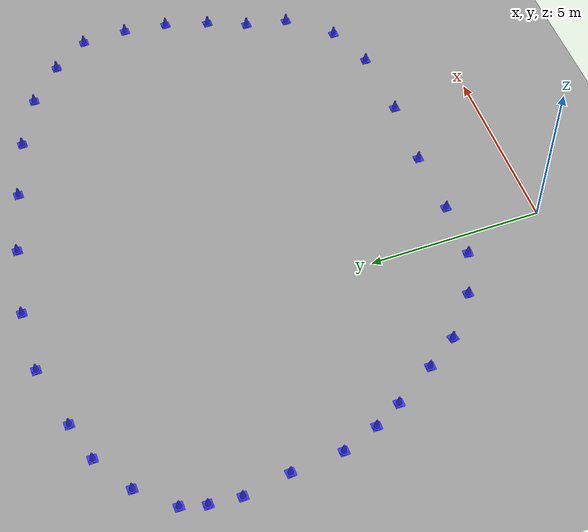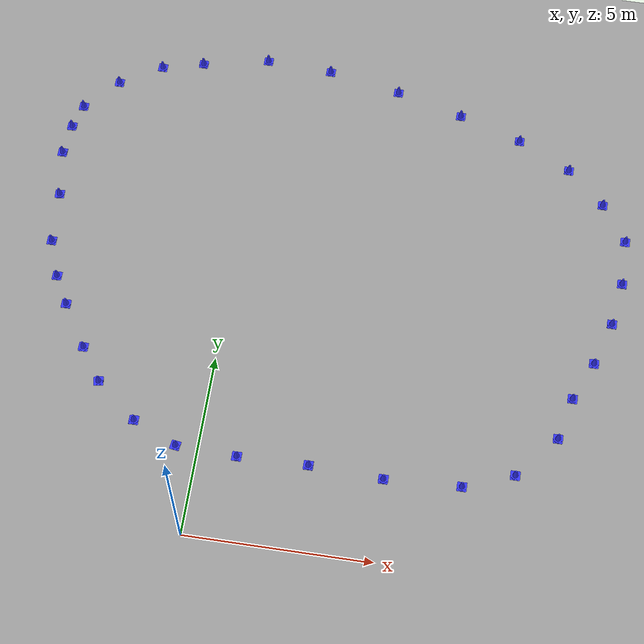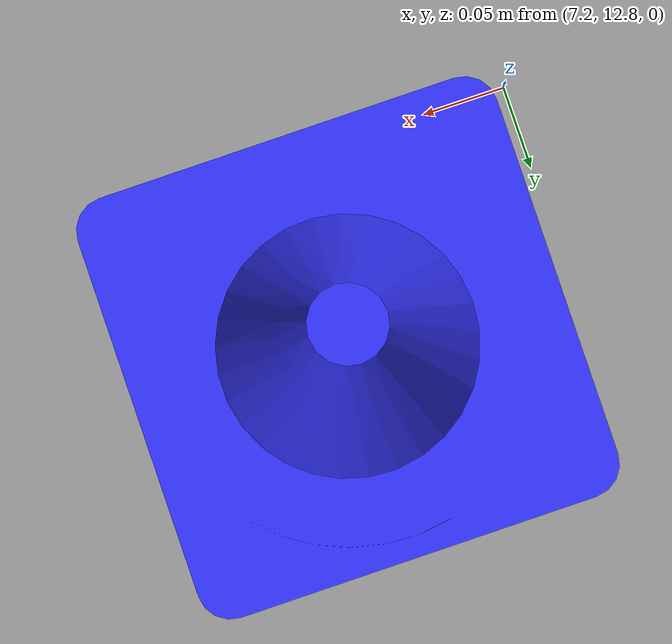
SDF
<sdf version="1.6">
 <world name="default">
  <light name="sun" type="directional">
   <pose>0 0 10 0 -0 0</pose>
   <diffuse>0.8 0.8 0.8 1</diffuse>
   <specular>0.2 0.2 0.2 1</specular>
   <attenuation>
    <range>1000</range>
    <constant>0.9</constant>
    <linear>0.01</linear>
    <quadratic>0.001</quadratic>
   </attenuation>
   <direction>0.5 0.1 -0.9</direction>
  </light>
  <scene><ambient>0.4 0.4 0.4 1</ambient><background>0.7 0.7 0.7 1</background><shadows>1</shadows></scene>
  <physics name="default_physics" default="0" type="ode">
   <max_step_size>0.01</max_step_size>
   <real_time_factor>1</real_time_factor>
   <real_time_update_rate>100</real_time_update_rate>
  </physics>
  <model name="ground_plane_0">
   <static>1</static>
   <link name="link">
    <collision name="collision">
     <geometry><plane><normal>0 0 1</normal><size>100 100</size></plane></geometry>
     <surface><friction><ode><mu>100</mu><mu2>50</mu2></ode></friction></surface>
    </collision>
    <visual name="visual">
     <cast_shadows>0</cast_shadows>
     <geometry><plane><normal>0 0 1</normal><size>100 100</size></plane></geometry>
     <material>
      <script><uri>file://media/materials/scripts/gazebo.material</uri><name>Gazebo/Grey</name></script>
     </material>
    </visual>
    <velocity_decay><linear>0</linear><angular>0</angular></velocity_decay>
   </link>
   <pose>0.497681 0 0 0 -0 0</pose>
  </model>
  <gravity>0 0 -9.8</gravity>
  <magnetic_field>6e-06 2.3e-05 -4.2e-05</magnetic_field>
  <atmosphere type="adiabatic"/>
  <spherical_coordinates>
   <surface_model>EARTH_WGS84</surface_model>
   <latitude_deg>0</latitude_deg>
   <longitude_deg>0</longitude_deg>
   <elevation>0</elevation>
   <heading_deg>0</heading_deg>
  </spherical_coordinates>
  <model name="cone_blue_0">
   <static>0</static>
   <link name="link">
    <inertial>
     <mass>0.5</mass>
     <inertia><ixx>0.01</ixx><ixy>0</ixy><ixz>0</ixz><iyy>0.005</iyy><iyz>0</iyz><izz>0.01</izz></inertia>
    </inertial>
    <collision name="collision"><geometry><box><size>0.05 0.02 0.03</size></box></geometry></collision>
    <visual name="visual">
     <geometry><mesh><uri>model://cone_blue/meshes/cone.dae</uri><scale>1 1 1</scale></mesh></geometry>
     <material>
      <ambient>0.2 0.2 1 1</ambient>
      <diffuse>0.2 0.2 1 1</diffuse>
      <specular>0.1 0.1 0.1 1</specular>
      <emissive>0 0 0 0</emissive>
     </material>
    </visual>
   </link>
   <pose>1.70615 14.3948 0.014128 -0.000376 -4e-05 3e-06</pose>
  </model>
  <model name="cone_blue_1">
   <static>0</static>
   <link name="link">
    <inertial>
     <mass>0.5</mass>
     <inertia><ixx>0.01</ixx><ixy>0</ixy><ixz>0</ixz><iyy>0.005</iyy><iyz>0</iyz><izz>0.01</izz></inertia>
    </inertial>
    <collision name="collision"><geometry><box><size>0.05 0.02 0.03</size></box></geometry></collision>
    <visual name="visual">
     <geometry><mesh><uri>model://cone_blue/meshes/cone.dae</uri><scale>1 1 1</scale></mesh></geometry>
     <material>
      <ambient>0.2 0.2 1 1</ambient>
      <diffuse>0.2 0.2 1 1</diffuse>
      <specular>0.1 0.1 0.1 1</specular>
      <emissive>0 0 0 0</emissive>
     </material>
    </visual>
   </link>
   <pose>1.05166 2.30791 0.014128 0.000376 -4e-05 0</pose>
  </model>
  <model name="cone_blue_2">
   <static>0</static>
   <link name="link">
    <inertial>
     <mass>0.5</mass>
     <inertia><ixx>0.01</ixx><ixy>0</ixy><ixz>0</ixz><iyy>0.005</iyy><iyz>0</iyz><izz>0.01</izz></inertia>
    </inertial>
    <collision name="collision"><geometry><box><size>0.05 0.02 0.03</size></box></geometry></collision>
    <visual name="visual">
     <geometry><mesh><uri>model://cone_blue/meshes/cone.dae</uri><scale>1 1 1</scale></mesh></geometry>
     <material>
      <ambient>0.2 0.2 1 1</ambient>
      <diffuse>0.2 0.2 1 1</diffuse>
      <specular>0.1 0.1 0.1 1</specular>
      <emissive>0 0 0 0</emissive>
     </material>
    </visual>
   </link>
   <pose>-0.133729 14.4962 0.014128 -0.000376 -4e-05 7e-06</pose>
  </model>
  <model name="cone_blue_3">
   <static>0</static>
   <link name="link">
    <inertial>
     <mass>0.5</mass>
     <inertia><ixx>0.01</ixx><ixy>0</ixy><ixz>0</ixz><iyy>0.005</iyy><iyz>0</iyz><izz>0.01</izz></inertia>
    </inertial>
    <collision name="collision"><geometry><box><size>0.05 0.02 0.03</size></box></geometry></collision>
    <visual name="visual">
     <geometry><mesh><uri>model://cone_blue/meshes/cone.dae</uri><scale>1 1 1</scale></mesh></geometry>
     <material>
      <ambient>0.2 0.2 1 1</ambient>
      <diffuse>0.2 0.2 1 1</diffuse>
      <specular>0.1 0.1 0.1 1</specular>
      <emissive>0 0 0 0</emissive>
     </material>
    </visual>
   </link>
   <pose>-1.9773 14.1226 0.014128 0.000376 -4e-05 -3e-06</pose>
  </model>
  <model name="cone_blue_4">
   <static>0</static>
   <link name="link">
    <inertial>
     <mass>0.5</mass>
     <inertia><ixx>0.01</ixx><ixy>0</ixy><ixz>0</ixz><iyy>0.005</iyy><iyz>0</iyz><izz>0.01</izz></inertia>
    </inertial>
    <collision name="collision"><geometry><box><size>0.05 0.02 0.03</size></box></geometry></collision>
    <visual name="visual">
     <geometry><mesh><uri>model://cone_blue/meshes/cone.dae</uri><scale>1 1 1</scale></mesh></geometry>
     <material>
      <ambient>0.2 0.2 1 1</ambient>
      <diffuse>0.2 0.2 1 1</diffuse>
      <specular>0.1 0.1 0.1 1</specular>
      <emissive>0 0 0 0</emissive>
     </material>
    </visual>
   </link>
   <pose>3.73622 13.9895 0.014128 -0.000376 -4e-05 7e-06</pose>
  </model>
  <model name="cone_blue_5">
   <static>0</static>
   <link name="link">
    <inertial>
     <mass>0.5</mass>
     <inertia><ixx>0.01</ixx><ixy>0</ixy><ixz>0</ixz><iyy>0.005</iyy><iyz>0</iyz><izz>0.01</izz></inertia>
    </inertial>
    <collision name="collision"><geometry><box><size>0.05 0.02 0.03</size></box></geometry></collision>
    <visual name="visual">
     <geometry><mesh><uri>model://cone_blue/meshes/cone.dae</uri><scale>1 1 1</scale></mesh></geometry>
     <material>
      <ambient>0.2 0.2 1 1</ambient>
      <diffuse>0.2 0.2 1 1</diffuse>
      <specular>0.1 0.1 0.1 1</specular>
      <emissive>0 0 0 0</emissive>
     </material>
    </visual>
   </link>
   <pose>5.60259 13.4702 0.014128 0.000376 -4e-05 -3e-06</pose>
  </model>
  <model name="cone_blue_6">
   <static>0</static>
   <link name="link">
    <inertial>
     <mass>0.5</mass>
     <inertia><ixx>0.01</ixx><ixy>0</ixy><ixz>0</ixz><iyy>0.005</iyy><iyz>0</iyz><izz>0.01</izz></inertia>
    </inertial>
    <collision name="collision"><geometry><box><size>0.05 0.02 0.03</size></box></geometry></collision>
    <visual name="visual">
     <geometry><mesh><uri>model://cone_blue/meshes/cone.dae</uri><scale>1 1 1</scale></mesh></geometry>
     <material>
      <ambient>0.2 0.2 1 1</ambient>
      <diffuse>0.2 0.2 1 1</diffuse>
      <specular>0.1 0.1 0.1 1</specular>
      <emissive>0 0 0 0</emissive>
     </material>
    </visual>
   </link>
   <pose>7.34805 12.8968 0.014128 -0.000376 -4e-05 7e-06</pose>
  </model>
  <model name="cone_blue_7">
   <static>0</static>
   <link name="link">
    <inertial>
     <mass>0.5</mass>
     <inertia><ixx>0.01</ixx><ixy>0</ixy><ixz>0</ixz><iyy>0.005</iyy><iyz>0</iyz><izz>0.01</izz></inertia>
    </inertial>
    <collision name="collision"><geometry><box><size>0.05 0.02 0.03</size></box></geometry></collision>
    <visual name="visual">
     <geometry><mesh><uri>model://cone_blue/meshes/cone.dae</uri><scale>1 1 1</scale></mesh></geometry>
     <material>
      <ambient>0.2 0.2 1 1</ambient>
      <diffuse>0.2 0.2 1 1</diffuse>
      <specular>0.1 0.1 0.1 1</specular>
      <emissive>0 0 0 0</emissive>
     </material>
    </visual>
   </link>
   <pose>8.82223 12.1492 0.014128 0.000376 -4e-05 -3e-06</pose>
  </model>
  <model name="cone_blue_8">
   <static>0</static>
   <link name="link">
    <inertial>
     <mass>0.5</mass>
     <inertia><ixx>0.01</ixx><ixy>0</ixy><ixz>0</ixz><iyy>0.005</iyy><iyz>0</iyz><izz>0.01</izz></inertia>
    </inertial>
    <collision name="collision"><geometry><box><size>0.05 0.02 0.03</size></box></geometry></collision>
    <visual name="visual">
     <geometry><mesh><uri>model://cone_blue/meshes/cone.dae</uri><scale>1 1 1</scale></mesh></geometry>
     <material>
      <ambient>0.2 0.2 1 1</ambient>
      <diffuse>0.2 0.2 1 1</diffuse>
      <specular>0.1 0.1 0.1 1</specular>
      <emissive>0 0 0 0</emissive>
     </material>
    </visual>
   </link>
   <pose>9.85901 11.1778 0.014128 -0.000376 -4e-05 7e-06</pose>
  </model>
  <model name="cone_blue_9">
   <static>0</static>
   <link name="link">
    <inertial>
     <mass>0.5</mass>
     <inertia><ixx>0.01</ixx><ixy>0</ixy><ixz>0</ixz><iyy>0.005</iyy><iyz>0</iyz><izz>0.01</izz></inertia>
    </inertial>
    <collision name="collision"><geometry><box><size>0.05 0.02 0.03</size></box></geometry></collision>
    <visual name="visual">
     <geometry><mesh><uri>model://cone_blue/meshes/cone.dae</uri><scale>1 1 1</scale></mesh></geometry>
     <material>
      <ambient>0.2 0.2 1 1</ambient>
      <diffuse>0.2 0.2 1 1</diffuse>
      <specular>0.1 0.1 0.1 1</specular>
      <emissive>0 0 0 0</emissive>
     </material>
    </visual>
   </link>
   <pose>10.5745 10.1199 0.014128 0.000376 -4e-05 -3e-06</pose>
  </model>
  <model name="cone_blue_10">
   <static>0</static>
   <link name="link">
    <inertial>
     <mass>0.5</mass>
     <inertia><ixx>0.01</ixx><ixy>0</ixy><ixz>0</ixz><iyy>0.005</iyy><iyz>0</iyz><izz>0.01</izz></inertia>
    </inertial>
    <collision name="collision"><geometry><box><size>0.05 0.02 0.03</size></box></geometry></collision>
    <visual name="visual">
     <geometry><mesh><uri>model://cone_blue/meshes/cone.dae</uri><scale>1 1 1</scale></mesh></geometry>
     <material>
      <ambient>0.2 0.2 1 1</ambient>
      <diffuse>0.2 0.2 1 1</diffuse>
      <specular>0.1 0.1 0.1 1</specular>
      <emissive>0 0 0 0</emissive>
     </material>
    </visual>
   </link>
   <pose>-3.12545 13.8325 0.014128 -0.000376 -4e-05 7e-06</pose>
  </model>
  <model name="cone_blue_11">
   <static>0</static>
   <link name="link">
    <inertial>
     <mass>0.5</mass>
     <inertia><ixx>0.01</ixx><ixy>0</ixy><ixz>0</ixz><iyy>0.005</iyy><iyz>0</iyz><izz>0.01</izz></inertia>
    </inertial>
    <collision name="collision"><geometry><box><size>0.05 0.02 0.03</size></box></geometry></collision>
    <visual name="visual">
     <geometry><mesh><uri>model://cone_blue/meshes/cone.dae</uri><scale>1 1 1</scale></mesh></geometry>
     <material>
      <ambient>0.2 0.2 1 1</ambient>
      <diffuse>0.2 0.2 1 1</diffuse>
      <specular>0.1 0.1 0.1 1</specular>
      <emissive>0 0 0 0</emissive>
     </material>
    </visual>
   </link>
   <pose>-4.26396 13.144 0.014128 0.000376 -4e-05 -3e-06</pose>
  </model>
  <model name="cone_blue_12">
   <static>0</static>
   <link name="link">
    <inertial>
     <mass>0.5</mass>
     <inertia><ixx>0.01</ixx><ixy>0</ixy><ixz>0</ixz><iyy>0.005</iyy><iyz>0</iyz><izz>0.01</izz></inertia>
    </inertial>
    <collision name="collision"><geometry><box><size>0.05 0.02 0.03</size></box></geometry></collision>
    <visual name="visual">
     <geometry><mesh><uri>model://cone_blue/meshes/cone.dae</uri><scale>1 1 1</scale></mesh></geometry>
     <material>
      <ambient>0.2 0.2 1 1</ambient>
      <diffuse>0.2 0.2 1 1</diffuse>
      <specular>0.1 0.1 0.1 1</specular>
      <emissive>0 0 0 0</emissive>
     </material>
    </visual>
   </link>
   <pose>-5.11728 12.2012 0.014128 -0.000376 -4e-05 7e-06</pose>
  </model>
  <model name="cone_blue_13">
   <static>0</static>
   <link name="link">
    <inertial>
     <mass>0.5</mass>
     <inertia><ixx>0.01</ixx><ixy>0</ixy><ixz>0</ixz><iyy>0.005</iyy><iyz>0</iyz><izz>0.01</izz></inertia>
    </inertial>
    <collision name="collision"><geometry><box><size>0.05 0.02 0.03</size></box></geometry></collision>
    <visual name="visual">
     <geometry><mesh><uri>model://cone_blue/meshes/cone.dae</uri><scale>1 1 1</scale></mesh></geometry>
     <material>
      <ambient>0.2 0.2 1 1</ambient>
      <diffuse>0.2 0.2 1 1</diffuse>
      <specular>0.1 0.1 0.1 1</specular>
      <emissive>0 0 0 0</emissive>
     </material>
    </visual>
   </link>
   <pose>-5.3111 11.5073 0.014128 0.000376 -4e-05 -3e-06</pose>
  </model>
  <model name="cone_blue_14">
   <static>0</static>
   <link name="link">
    <inertial>
     <mass>0.5</mass>
     <inertia><ixx>0.01</ixx><ixy>0</ixy><ixz>0</ixz><iyy>0.005</iyy><iyz>0</iyz><izz>0.01</izz></inertia>
    </inertial>
    <collision name="collision"><geometry><box><size>0.05 0.02 0.03</size></box></geometry></collision>
    <visual name="visual">
     <geometry><mesh><uri>model://cone_blue/meshes/cone.dae</uri><scale>1 1 1</scale></mesh></geometry>
     <material>
      <ambient>0.2 0.2 1 1</ambient>
      <diffuse>0.2 0.2 1 1</diffuse>
      <specular>0.1 0.1 0.1 1</specular>
      <emissive>0 0 0 0</emissive>
     </material>
    </visual>
   </link>
   <pose>-5.39888 10.6287 0.014128 0.000376 -4e-05 -7e-06</pose>
  </model>
  <model name="cone_blue_15">
   <static>0</static>
   <link name="link">
    <inertial>
     <mass>0.5</mass>
     <inertia><ixx>0.01</ixx><ixy>0</ixy><ixz>0</ixz><iyy>0.005</iyy><iyz>0</iyz><izz>0.01</izz></inertia>
    </inertial>
    <collision name="collision"><geometry><box><size>0.05 0.02 0.03</size></box></geometry></collision>
    <visual name="visual">
     <geometry><mesh><uri>model://cone_blue/meshes/cone.dae</uri><scale>1 1 1</scale></mesh></geometry>
     <material>
      <ambient>0.2 0.2 1 1</ambient>
      <diffuse>0.2 0.2 1 1</diffuse>
      <specular>0.1 0.1 0.1 1</specular>
      <emissive>0 0 0 0</emissive>
     </material>
    </visual>
   </link>
   <pose>-5.19196 9.29345 0.014128 -0.000376 -4e-05 0.056869</pose>
  </model>
  <model name="cone_blue_16">
   <static>0</static>
   <link name="link">
    <inertial>
     <mass>0.5</mass>
     <inertia><ixx>0.01</ixx><ixy>0</ixy><ixz>0</ixz><iyy>0.005</iyy><iyz>0</iyz><izz>0.01</izz></inertia>
    </inertial>
    <collision name="collision"><geometry><box><size>0.05 0.02 0.03</size></box></geometry></collision>
    <visual name="visual">
     <geometry><mesh><uri>model://cone_blue/meshes/cone.dae</uri><scale>1 1 1</scale></mesh></geometry>
     <material>
      <ambient>0.2 0.2 1 1</ambient>
      <diffuse>0.2 0.2 1 1</diffuse>
      <specular>0.1 0.1 0.1 1</specular>
      <emissive>0 0 0 0</emissive>
     </material>
    </visual>
   </link>
   <pose>-5.09245 7.82063 0.014128 0.000376 -4e-05 -2e-06</pose>
  </model>
  <model name="cone_blue_17">
   <static>0</static>
   <link name="link">
    <inertial>
     <mass>0.5</mass>
     <inertia><ixx>0.01</ixx><ixy>0</ixy><ixz>0</ixz><iyy>0.005</iyy><iyz>0</iyz><izz>0.01</izz></inertia>
    </inertial>
    <collision name="collision"><geometry><box><size>0.05 0.02 0.03</size></box></geometry></collision>
    <visual name="visual">
     <geometry><mesh><uri>model://cone_blue/meshes/cone.dae</uri><scale>1 1 1</scale></mesh></geometry>
     <material>
      <ambient>0.2 0.2 1 1</ambient>
      <diffuse>0.2 0.2 1 1</diffuse>
      <specular>0.1 0.1 0.1 1</specular>
      <emissive>0 0 0 0</emissive>
     </material>
    </visual>
   </link>
   <pose>-4.71623 6.77739 0.014128 -0.000376 -4e-05 6e-06</pose>
  </model>
  <model name="cone_blue_18">
   <static>0</static>
   <link name="link">
    <inertial>
     <mass>0.5</mass>
     <inertia><ixx>0.01</ixx><ixy>0</ixy><ixz>0</ixz><iyy>0.005</iyy><iyz>0</iyz><izz>0.01</izz></inertia>
    </inertial>
    <collision name="collision"><geometry><box><size>0.05 0.02 0.03</size></box></geometry></collision>
    <visual name="visual">
     <geometry><mesh><uri>model://cone_blue/meshes/cone.dae</uri><scale>1 1 1</scale></mesh></geometry>
     <material>
      <ambient>0.2 0.2 1 1</ambient>
      <diffuse>0.2 0.2 1 1</diffuse>
      <specular>0.1 0.1 0.1 1</specular>
      <emissive>0 0 0 0</emissive>
     </material>
    </visual>
   </link>
   <pose>-4.29222 5.98194 0.014128 0.000376 -4e-05 -2e-06</pose>
  </model>
  <model name="cone_blue_19">
   <static>0</static>
   <link name="link">
    <inertial>
     <mass>0.5</mass>
     <inertia><ixx>0.01</ixx><ixy>0</ixy><ixz>0</ixz><iyy>0.005</iyy><iyz>0</iyz><izz>0.01</izz></inertia>
    </inertial>
    <collision name="collision"><geometry><box><size>0.05 0.02 0.03</size></box></geometry></collision>
    <visual name="visual">
     <geometry><mesh><uri>model://cone_blue/meshes/cone.dae</uri><scale>1 1 1</scale></mesh></geometry>
     <material>
      <ambient>0.2 0.2 1 1</ambient>
      <diffuse>0.2 0.2 1 1</diffuse>
      <specular>0.1 0.1 0.1 1</specular>
      <emissive>0 0 0 0</emissive>
     </material>
    </visual>
   </link>
   <pose>-3.56207 4.78894 0.014128 -0.000376 -4e-05 6e-06</pose>
  </model>
  <model name="cone_blue_20">
   <static>0</static>
   <link name="link">
    <inertial>
     <mass>0.5</mass>
     <inertia><ixx>0.01</ixx><ixy>0</ixy><ixz>0</ixz><iyy>0.005</iyy><iyz>0</iyz><izz>0.01</izz></inertia>
    </inertial>
    <collision name="collision"><geometry><box><size>0.05 0.02 0.03</size></box></geometry></collision>
    <visual name="visual">
     <geometry><mesh><uri>model://cone_blue/meshes/cone.dae</uri><scale>1 1 1</scale></mesh></geometry>
     <material>
      <ambient>0.2 0.2 1 1</ambient>
      <diffuse>0.2 0.2 1 1</diffuse>
      <specular>0.1 0.1 0.1 1</specular>
      <emissive>0 0 0 0</emissive>
     </material>
    </visual>
   </link>
   <pose>-2.95042 3.87259 0.014128 0.000376 4e-05 0.181144</pose>
  </model>
  <model name="cone_blue_21">
   <static>0</static>
   <link name="link">
    <inertial>
     <mass>0.5</mass>
     <inertia><ixx>0.01</ixx><ixy>0</ixy><ixz>0</ixz><iyy>0.005</iyy><iyz>0</iyz><izz>0.01</izz></inertia>
    </inertial>
    <collision name="collision"><geometry><box><size>0.05 0.02 0.03</size></box></geometry></collision>
    <visual name="visual">
     <geometry><mesh><uri>model://cone_blue/meshes/cone.dae</uri><scale>1 1 1</scale></mesh></geometry>
     <material>
      <ambient>0.2 0.2 1 1</ambient>
      <diffuse>0.2 0.2 1 1</diffuse>
      <specular>0.1 0.1 0.1 1</specular>
      <emissive>0 0 0 0</emissive>
     </material>
    </visual>
   </link>
   <pose>-1.80705 2.91597 0.014128 -0.000376 -4e-05 6e-06</pose>
  </model>
  <model name="cone_blue_22">
   <static>0</static>
   <link name="link">
    <inertial>
     <mass>0.5</mass>
     <inertia><ixx>0.01</ixx><ixy>0</ixy><ixz>0</ixz><iyy>0.005</iyy><iyz>0</iyz><izz>0.01</izz></inertia>
    </inertial>
    <collision name="collision"><geometry><box><size>0.05 0.02 0.03</size></box></geometry></collision>
    <visual name="visual">
     <geometry><mesh><uri>model://cone_blue/meshes/cone.dae</uri><scale>1 1 1</scale></mesh></geometry>
     <material>
      <ambient>0.2 0.2 1 1</ambient>
      <diffuse>0.2 0.2 1 1</diffuse>
      <specular>0.1 0.1 0.1 1</specular>
      <emissive>0 0 0 0</emissive>
     </material>
    </visual>
   </link>
   <pose>-0.591473 2.37129 0.014128 -0.000376 -4e-05 -0.137084</pose>
  </model>
  <model name="cone_blue_23">
   <static>0</static>
   <link name="link">
    <inertial>
     <mass>0.5</mass>
     <inertia><ixx>0.01</ixx><ixy>0</ixy><ixz>0</ixz><iyy>0.005</iyy><iyz>0</iyz><izz>0.01</izz></inertia>
    </inertial>
    <collision name="collision"><geometry><box><size>0.05 0.02 0.03</size></box></geometry></collision>
    <visual name="visual">
     <geometry><mesh><uri>model://cone_blue/meshes/cone.dae</uri><scale>1 1 1</scale></mesh></geometry>
     <material>
      <ambient>0.2 0.2 1 1</ambient>
      <diffuse>0.2 0.2 1 1</diffuse>
      <specular>0.1 0.1 0.1 1</specular>
      <emissive>0 0 0 0</emissive>
     </material>
    </visual>
   </link>
   <pose>2.94301 2.3385 0.014128 -0.000376 -4e-05 -3e-06</pose>
  </model>
  <model name="cone_blue_24">
   <static>0</static>
   <link name="link">
    <inertial>
     <mass>0.5</mass>
     <inertia><ixx>0.01</ixx><ixy>0</ixy><ixz>0</ixz><iyy>0.005</iyy><iyz>0</iyz><izz>0.01</izz></inertia>
    </inertial>
    <collision name="collision"><geometry><box><size>0.05 0.02 0.03</size></box></geometry></collision>
    <visual name="visual">
     <geometry><mesh><uri>model://cone_blue/meshes/cone.dae</uri><scale>1 1 1</scale></mesh></geometry>
     <material>
      <ambient>0.2 0.2 1 1</ambient>
      <diffuse>0.2 0.2 1 1</diffuse>
      <specular>0.1 0.1 0.1 1</specular>
      <emissive>0 0 0 0</emissive>
     </material>
    </visual>
   </link>
   <pose>4.9289 2.24806 0.014128 0.000376 -4e-05 -3e-06</pose>
  </model>
  <model name="cone_blue_25">
   <static>0</static>
   <link name="link">
    <inertial>
     <mass>0.5</mass>
     <inertia><ixx>0.01</ixx><ixy>0</ixy><ixz>0</ixz><iyy>0.005</iyy><iyz>0</iyz><izz>0.01</izz></inertia>
    </inertial>
    <collision name="collision"><geometry><box><size>0.05 0.02 0.03</size></box></geometry></collision>
    <visual name="visual">
     <geometry><mesh><uri>model://cone_blue/meshes/cone.dae</uri><scale>1 1 1</scale></mesh></geometry>
     <material>
      <ambient>0.2 0.2 1 1</ambient>
      <diffuse>0.2 0.2 1 1</diffuse>
      <specular>0.1 0.1 0.1 1</specular>
      <emissive>0 0 0 0</emissive>
     </material>
    </visual>
   </link>
   <pose>6.97271 2.3431 0.014128 -0.000376 -4e-05 2e-06</pose>
  </model>
  <model name="cone_blue_26">
   <static>0</static>
   <link name="link">
    <inertial>
     <mass>0.5</mass>
     <inertia><ixx>0.01</ixx><ixy>0</ixy><ixz>0</ixz><iyy>0.005</iyy><iyz>0</iyz><izz>0.01</izz></inertia>
    </inertial>
    <collision name="collision"><geometry><box><size>0.05 0.02 0.03</size></box></geometry></collision>
    <visual name="visual">
     <geometry><mesh><uri>model://cone_blue/meshes/cone.dae</uri><scale>1 1 1</scale></mesh></geometry>
     <material>
      <ambient>0.2 0.2 1 1</ambient>
      <diffuse>0.2 0.2 1 1</diffuse>
      <specular>0.1 0.1 0.1 1</specular>
      <emissive>0 0 0 0</emissive>
     </material>
    </visual>
   </link>
   <pose>8.3104 2.85621 0.014128 0.000376 -4e-05 2e-06</pose>
  </model>
  <model name="cone_blue_27">
   <static>0</static>
   <link name="link">
    <inertial>
     <mass>0.5</mass>
     <inertia><ixx>0.01</ixx><ixy>0</ixy><ixz>0</ixz><iyy>0.005</iyy><iyz>0</iyz><izz>0.01</izz></inertia>
    </inertial>
    <collision name="collision"><geometry><box><size>0.05 0.02 0.03</size></box></geometry></collision>
    <visual name="visual">
     <geometry><mesh><uri>model://cone_blue/meshes/cone.dae</uri><scale>1 1 1</scale></mesh></geometry>
     <material>
      <ambient>0.2 0.2 1 1</ambient>
      <diffuse>0.2 0.2 1 1</diffuse>
      <specular>0.1 0.1 0.1 1</specular>
      <emissive>0 0 0 0</emissive>
     </material>
    </visual>
   </link>
   <pose>9.30975 4.03837 0.014128 -0.000376 -4e-05 1e-06</pose>
  </model>
  <model name="cone_blue_28">
   <static>0</static>
   <link name="link">
    <inertial>
     <mass>0.5</mass>
     <inertia><ixx>0.01</ixx><ixy>0</ixy><ixz>0</ixz><iyy>0.005</iyy><iyz>0</iyz><izz>0.01</izz></inertia>
    </inertial>
    <collision name="collision"><geometry><box><size>0.05 0.02 0.03</size></box></geometry></collision>
    <visual name="visual">
     <geometry><mesh><uri>model://cone_blue/meshes/cone.dae</uri><scale>1 1 1</scale></mesh></geometry>
     <material>
      <ambient>0.2 0.2 1 1</ambient>
      <diffuse>0.2 0.2 1 1</diffuse>
      <specular>0.1 0.1 0.1 1</specular>
      <emissive>0 0 0 0</emissive>
     </material>
    </visual>
   </link>
   <pose>9.58093 5.22906 0.014128 0.000376 -4e-05 3e-06</pose>
  </model>
  <model name="cone_blue_29">
   <static>0</static>
   <link name="link">
    <inertial>
     <mass>0.5</mass>
     <inertia><ixx>0.01</ixx><ixy>0</ixy><ixz>0</ixz><iyy>0.005</iyy><iyz>0</iyz><izz>0.01</izz></inertia>
    </inertial>
    <collision name="collision"><geometry><box><size>0.05 0.02 0.03</size></box></geometry></collision>
    <visual name="visual">
     <geometry><mesh><uri>model://cone_blue/meshes/cone.dae</uri><scale>1 1 1</scale></mesh></geometry>
     <material>
      <ambient>0.2 0.2 1 1</ambient>
      <diffuse>0.2 0.2 1 1</diffuse>
      <specular>0.1 0.1 0.1 1</specular>
      <emissive>0 0 0 0</emissive>
     </material>
    </visual>
   </link>
   <pose>10.0521 6.33038 0.014128 0.000376 -4e-05 2e-06</pose>
  </model>
  <model name="cone_blue_30">
   <static>0</static>
   <link name="link">
    <inertial>
     <mass>0.5</mass>
     <inertia><ixx>0.01</ixx><ixy>0</ixy><ixz>0</ixz><iyy>0.005</iyy><iyz>0</iyz><izz>0.01</izz></inertia>
    </inertial>
    <collision name="collision"><geometry><box><size>0.05 0.02 0.03</size></box></geometry></collision>
    <visual name="visual">
     <geometry><mesh><uri>model://cone_blue/meshes/cone.dae</uri><scale>1 1 1</scale></mesh></geometry>
     <material>
      <ambient>0.2 0.2 1 1</ambient>
      <diffuse>0.2 0.2 1 1</diffuse>
      <specular>0.1 0.1 0.1 1</specular>
      <emissive>0 0 0 0</emissive>
     </material>
    </visual>
   </link>
   <pose>10.4272 7.5662 0.014128 -0.000376 -4e-05 2e-06</pose>
  </model>
  <model name="cone_blue_31">
   <static>0</static>
   <link name="link">
    <inertial>
     <mass>0.5</mass>
     <inertia><ixx>0.01</ixx><ixy>0</ixy><ixz>0</ixz><iyy>0.005</iyy><iyz>0</iyz><izz>0.01</izz></inertia>
    </inertial>
    <collision name="collision"><geometry><box><size>0.05 0.02 0.03</size></box></geometry></collision>
    <visual name="visual">
     <geometry><mesh><uri>model://cone_blue/meshes/cone.dae</uri><scale>1 1 1</scale></mesh></geometry>
     <material>
      <ambient>0.2 0.2 1 1</ambient>
      <diffuse>0.2 0.2 1 1</diffuse>
      <specular>0.1 0.1 0.1 1</specular>
      <emissive>0 0 0 0</emissive>
     </material>
    </visual>
   </link>
   <pose>10.5969 8.81337 0.014128 0.000376 -4e-05 2e-06</pose>
  </model>
 </world>
</sdf>
